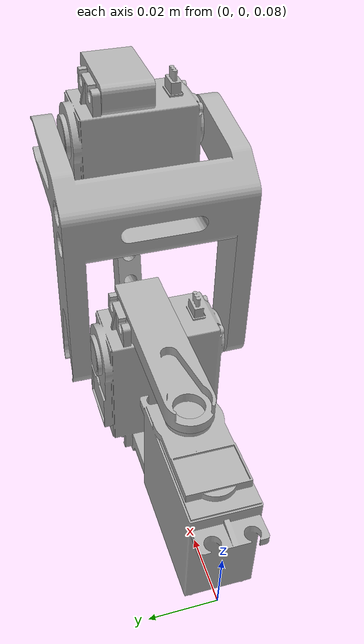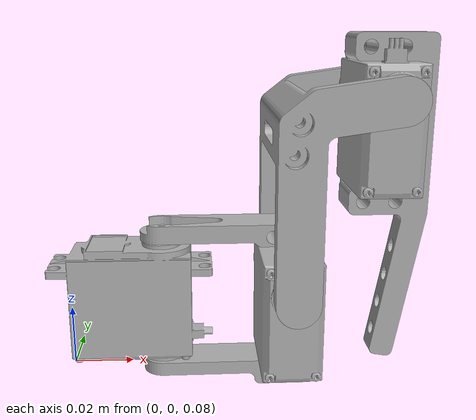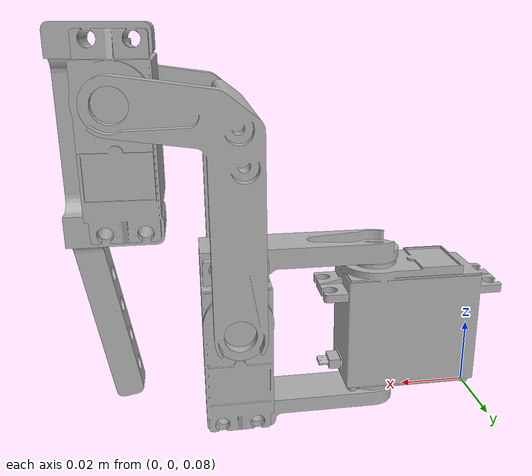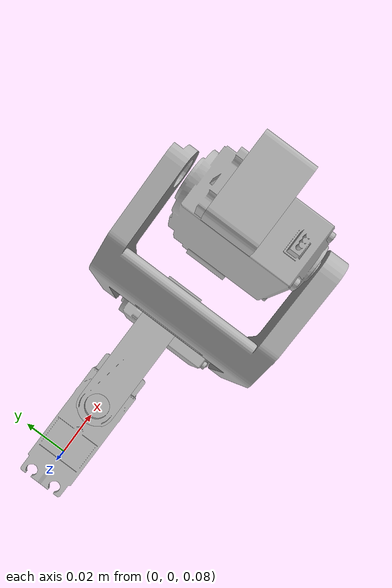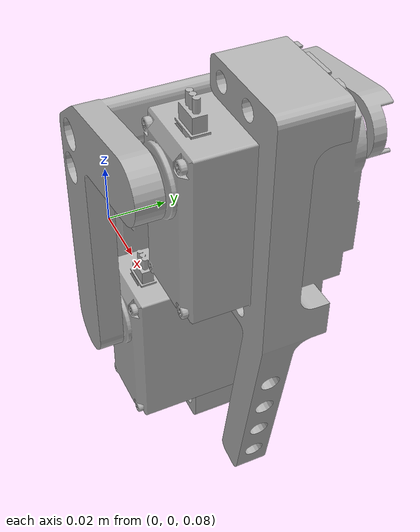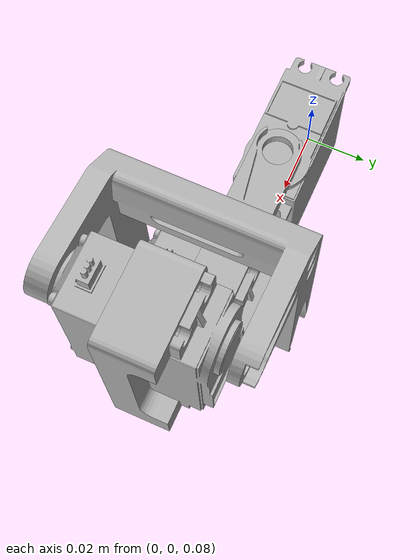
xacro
<?xml version="1.0" ?>
<robot name="leg" xmlns:xacro="http://www.ros.org/wiki/xacro">

<xacro:include filename="materials.xacro" />
<xacro:include filename="leg.trans" />
<xacro:include filename="leg.gazebo" />

<!-- World link is empty -->
<link name="world"></link>

<!-- Fix the base link to the world -->
<joint name="base_joint" type="fixed">
  <origin xyz="0 0 0.1" rpy="0.0 0.0 0.0"/>
  <parent link="world"/>
  <child link="base_link"/>
</joint>

<link name="base_link">
  <inertial>
    <origin xyz="0.02084957277113914 -4.999999927405297e-05 0.005464678664040545" rpy="0 0 0"/>
    <mass value="0.20788625758845178"/>
    <inertia ixx="2.8e-05" iyy="5.1e-05" izz="3.6e-05" ixy="-0.0" iyz="0.0" ixz="-0.0"/>
  </inertial>
  <visual>
    <origin xyz="0 0 0" rpy="0 0 0"/>
    <geometry>
      <mesh filename="package://leg_simulation/meshes/base_link.stl" scale="0.001 0.001 0.001"/>
    </geometry>
    <material name="silver"/>
  </visual>
  <collision>
    <origin xyz="0 0 0" rpy="0 0 0"/>
    <geometry>
      <mesh filename="package://leg_simulation/meshes/base_link.stl" scale="0.001 0.001 0.001"/>
    </geometry>
  </collision>
</link>

<link name="coxa_link">
  <inertial>
    <origin xyz="0.026007485429621068 3.059509432910487e-14 0.01818438994852521" rpy="0 0 0"/>
    <mass value="0.06587869059252294"/>
    <inertia ixx="3.9e-05" iyy="5.5e-05" izz="1.8e-05" ixy="0.0" iyz="0.0" ixz="-1e-06"/>
  </inertial>
  <visual>
    <origin xyz="-0.03085 5e-05 0.0171" rpy="0 0 0"/>
    <geometry>
      <mesh filename="package://leg_simulation/meshes/coxa_link.stl" scale="0.001 0.001 0.001"/>
    </geometry>
    <material name="silver"/>
  </visual>
  <collision>
    <origin xyz="-0.03085 5e-05 0.0171" rpy="0 0 0"/>
    <geometry>
      <mesh filename="package://leg_simulation/meshes/coxa_link.stl" scale="0.001 0.001 0.001"/>
    </geometry>
  </collision>
</link>

<link name="femur_motor">
  <inertial>
    <origin xyz="0.0052500000007259795 -0.008485321335959455 -0.024450427228860868" rpy="0 0 0"/>
    <mass value="0.20788625758845167"/>
    <inertia ixx="5.1e-05" iyy="3.6e-05" izz="2.8e-05" ixy="0.0" iyz="-0.0" ixz="-0.0"/>
  </inertial>
  <visual>
    <origin xyz="-0.067595 -0.00695 -0.0262" rpy="0 0 0"/>
    <geometry>
      <mesh filename="package://leg_simulation/meshes/femur_motor.stl" scale="0.001 0.001 0.001"/>
    </geometry>
    <material name="silver"/>
  </visual>
  <collision>
    <origin xyz="-0.067595 -0.00695 -0.0262" rpy="0 0 0"/>
    <geometry>
      <mesh filename="package://leg_simulation/meshes/femur_motor.stl" scale="0.001 0.001 0.001"/>
    </geometry>
  </collision>
</link>

<link name="femur_link">
  <inertial>
    <origin xyz="0.003276894450832013 0.01867044570423858 0.04204079165069964" rpy="0 0 0"/>
    <mass value="0.1650857236389534"/>
    <inertia ixx="0.000133" iyy="7.2e-05" izz="8.9e-05" ixy="4e-06" iyz="-4e-06" ixz="-1e-05"/>
  </inertial>
  <visual>
    <origin xyz="-0.072845 0.0241 -0.01175" rpy="0 0 0"/>
    <geometry>
      <mesh filename="package://leg_simulation/meshes/femur_link.stl" scale="0.001 0.001 0.001"/>
    </geometry>
    <material name="silver"/>
  </visual>
  <collision>
    <origin xyz="-0.072845 0.0241 -0.01175" rpy="0 0 0"/>
    <geometry>
      <mesh filename="package://leg_simulation/meshes/femur_link.stl" scale="0.001 0.001 0.001"/>
    </geometry>
  </collision>
</link>

<link name="tibia_motor">
  <inertial>
    <origin xyz="-1.1441156910763084e-07 0.02261467866404055 -0.010000413412594583" rpy="0 0 0"/>
    <mass value="0.20788625758845158"/>
    <inertia ixx="5.1e-05" iyy="3.6e-05" izz="2.8e-05" ixy="0.0" iyz="-0.0" ixz="-0.0"/>
  </inertial>
  <visual>
    <origin xyz="-0.101502 0.0241 -0.072527" rpy="0 0 0"/>
    <geometry>
      <mesh filename="package://leg_simulation/meshes/tibia_motor.stl" scale="0.001 0.001 0.001"/>
    </geometry>
    <material name="silver"/>
  </visual>
  <collision>
    <origin xyz="-0.101502 0.0241 -0.072527" rpy="0 0 0"/>
    <geometry>
      <mesh filename="package://leg_simulation/meshes/tibia_motor.stl" scale="0.001 0.001 0.001"/>
    </geometry>
  </collision>
</link>

<link name="tibia_link">
  <inertial>
    <origin xyz="0.0006676280408034474 -0.009300654358669749 -0.0385331849230801" rpy="0 0 0"/>
    <mass value="0.08248755202535803"/>
    <inertia ixx="8e-05" iyy="8.2e-05" izz="5e-06" ixy="0.0" iyz="-2e-06" ixz="1e-06"/>
  </inertial>
  <visual>
    <origin xyz="-0.107252 -0.00705 -0.087027" rpy="0 0 0"/>
    <geometry>
      <mesh filename="package://leg_simulation/meshes/tibia_link.stl" scale="0.001 0.001 0.001"/>
    </geometry>
    <material name="silver"/>
  </visual>
  <collision>
    <origin xyz="-0.107252 -0.00705 -0.087027" rpy="0 0 0"/>
    <geometry>
      <mesh filename="package://leg_simulation/meshes/tibia_link.stl" scale="0.001 0.001 0.001"/>
    </geometry>
  </collision>
</link>

<joint name="coxa_joint" type="revolute">
  <origin xyz="0.03085 -5e-05 -0.0171" rpy="0 0 0"/>
  <parent link="base_link"/>
  <child link="coxa_link"/>
  <axis xyz="0.0 -0.0 -1.0"/>
  <limit upper="1.570796" lower="-1.570796" effort="100" velocity="100"/>
  <dynamics damping="10.0" friction="10.0"/>
</joint>

<joint name="coxa_link_femur_motor" type="fixed">
  <origin xyz="0.036745 0.007 0.0433" rpy="0 0 0"/>
  <parent link="coxa_link"/>
  <child link="femur_motor"/>
</joint>

<joint name="femur_joint" type="revolute">
  <origin xyz="0.00525 -0.03105 -0.01445" rpy="0 0 0"/>
  <parent link="femur_motor"/>
  <child link="femur_link"/>
  <axis xyz="-0.0 -1.0 0.0"/>
  <limit upper="0.872665" lower="-1.570796" effort="100" velocity="100"/>
  <dynamics damping="10.0" friction="10.0"/>
</joint>

<joint name="tibia_joint" type="revolute">
  <origin xyz="0.028657 0.0 0.060777" rpy="0 0 0"/>
  <parent link="femur_link"/>
  <child link="tibia_motor"/>
  <axis xyz="0.0 1.0 -0.0"/>
  <limit upper="0.0" lower="-3.141593" effort="100" velocity="100"/>
  <dynamics damping="10.0" friction="10.0"/>
</joint>

<joint name="tibia_motor_tibia_link" type="fixed">
  <origin xyz="0.00575 0.03115 0.0145" rpy="0 0 0"/>
  <parent link="tibia_motor"/>
  <child link="tibia_link"/>
</joint>

</robot>

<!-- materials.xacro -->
<robot name="leg_urdf" xmlns:xacro="http://www.ros.org/wiki/xacro" >

<material name="silver">
  <color rgba="0.700 0.700 0.700 1.000"/>
</material>

</robot>

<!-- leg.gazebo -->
<robot name="leg_urdf" xmlns:xacro="http://www.ros.org/wiki/xacro" >

<xacro:property name="body_color" value="Gazebo/Silver" />

<!--
  This plugin will publish the joint_states for the selected joints.
  The robot_state_publisher can then use the joint_states to broadcast
  the appropriate TFs.
-->
<gazebo>
  <plugin name="gazebo_ros_joint_state_publisher"
    filename="libgazebo_ros_joint_state_publisher.so">
    <update_rate>20</update_rate>
    <joint_name>coxa_joint</joint_name>
    <joint_name>femur_joint</joint_name>
    <joint_name>tibia_joint</joint_name>
  </plugin>
</gazebo>

<gazebo>
  <plugin name="gazebo_ros_joint_pose_trajectory"
    filename="libgazebo_ros_joint_pose_trajectory.so">
    <update_rate>20</update_rate>
  </plugin>
</gazebo>

<gazebo reference="base_link">
  <material>${body_color}</material>
  <mu1>0.2</mu1>
  <mu2>0.2</mu2>
  <selfCollide>true</selfCollide>
  <gravity>true</gravity>
</gazebo>

<gazebo reference="coxa_link">
  <material>${body_color}</material>
  <mu1>0.2</mu1>
  <mu2>0.2</mu2>
  <selfCollide>true</selfCollide>
</gazebo>

<gazebo reference="femur_motor">
  <material>${body_color}</material>
  <mu1>0.2</mu1>
  <mu2>0.2</mu2>
  <selfCollide>true</selfCollide>
</gazebo>

<gazebo reference="femur_link">
  <material>${body_color}</material>
  <mu1>0.2</mu1>
  <mu2>0.2</mu2>
  <selfCollide>true</selfCollide>
</gazebo>

<gazebo reference="tibia_motor">
  <material>${body_color}</material>
  <mu1>0.2</mu1>
  <mu2>0.2</mu2>
  <selfCollide>true</selfCollide>
</gazebo>

<gazebo reference="tibia_link">
  <material>${body_color}</material>
  <mu1>0.2</mu1>
  <mu2>0.2</mu2>
  <selfCollide>true</selfCollide>
</gazebo>

</robot>
